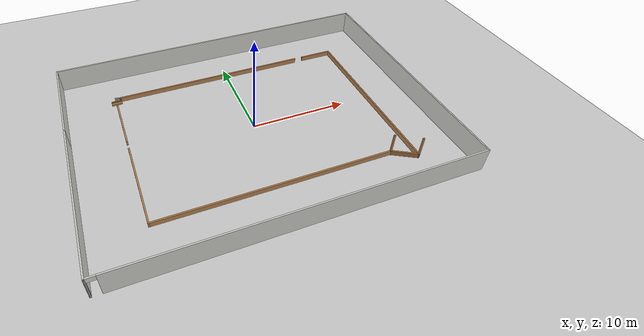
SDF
<sdf version="1.7">
 <world name="default">
  <light name="sun" type="directional">
   <pose>0 0 10 0 -0 0</pose>
   <diffuse>0.8 0.8 0.8 1</diffuse>
   <specular>0.2 0.2 0.2 1</specular>
   <attenuation>
    <range>1000</range>
    <constant>0.9</constant>
    <linear>0.01</linear>
    <quadratic>0.001</quadratic>
   </attenuation>
   <direction>-0.5 0.1 -0.9</direction>
   <spot><inner_angle>0</inner_angle><outer_angle>0</outer_angle><falloff>0</falloff></spot>
  </light>
  <model name="ground_plane">
   <static>1</static>
   <link name="link">
    <collision name="collision">
     <geometry><plane><normal>0 0 1</normal><size>100 100</size></plane></geometry>
     <surface><friction><ode><mu>100</mu><mu2>50</mu2></ode></friction></surface>
    </collision>
    <visual name="visual">
     <cast_shadows>0</cast_shadows>
     <geometry><plane><normal>0 0 1</normal><size>100 100</size></plane></geometry>
     <material>
      <script><uri>file://media/materials/scripts/gazebo.material</uri><name>Gazebo/Grey</name></script>
     </material>
    </visual>
   </link>
  </model>
  <gravity>0 0 -9.8</gravity>
  <magnetic_field>6e-06 2.3e-05 -4.2e-05</magnetic_field>
  <atmosphere type="adiabatic"/>
  <physics type="ode">
   <max_step_size>0.001</max_step_size>
   <real_time_factor>1</real_time_factor>
   <real_time_update_rate>1000</real_time_update_rate>
  </physics>
  <scene><ambient>0.4 0.4 0.4 1</ambient><background>0.7 0.7 0.7 1</background><shadows>1</shadows></scene>
  <spherical_coordinates>
   <surface_model>EARTH_WGS84</surface_model>
   <latitude_deg>0</latitude_deg>
   <longitude_deg>0</longitude_deg>
   <elevation>0</elevation>
   <heading_deg>0</heading_deg>
  </spherical_coordinates>
  <model name="w9">
   <pose>-0.107174 0.099638 0 0 -0 0</pose>
   <link name="Stairs_0">
    <visual name="Stairs_0_Visual_0">
     <pose>-12.3155 8.59462 0.083333 0 -0 0</pose>
     <geometry><box><size>1 0.233333 0.166667</size></box></geometry>
     <material>
      <script><uri>file://media/materials/scripts/gazebo.material</uri><name>Gazebo/Wood</name></script>
      <ambient>1 1 1 1</ambient>
     </material>
     <meta><layer>0</layer></meta>
    </visual>
    <collision name="Stairs_0_Collision_0">
     <geometry><box><size>1 0.233333 0.166667</size></box></geometry>
     <pose>-12.3155 8.59462 0.083333 0 -0 0</pose>
    </collision>
    <visual name="Stairs_0_Visual_1">
     <pose>-12.3155 8.36129 0.25 0 -0 0</pose>
     <geometry><box><size>1 0.233333 0.166667</size></box></geometry>
     <material>
      <script><uri>file://media/materials/scripts/gazebo.material</uri><name>Gazebo/Wood</name></script>
      <ambient>1 1 1 1</ambient>
     </material>
     <meta><layer>0</layer></meta>
    </visual>
    <collision name="Stairs_0_Collision_1">
     <geometry><box><size>1 0.233333 0.166667</size></box></geometry>
     <pose>-12.3155 8.36129 0.25 0 -0 0</pose>
    </collision>
    <visual name="Stairs_0_Visual_2">
     <pose>-12.3155 8.12796 0.416667 0 -0 0</pose>
     <geometry><box><size>1 0.233333 0.166667</size></box></geometry>
     <material>
      <script><uri>file://media/materials/scripts/gazebo.material</uri><name>Gazebo/Wood</name></script>
      <ambient>1 1 1 1</ambient>
     </material>
     <meta><layer>0</layer></meta>
    </visual>
    <collision name="Stairs_0_Collision_2">
     <geometry><box><size>1 0.233333 0.166667</size></box></geometry>
     <pose>-12.3155 8.12796 0.416667 0 -0 0</pose>
    </collision>
    <visual name="Stairs_0_Visual_3">
     <pose>-12.3155 7.89462 0.583333 0 -0 0</pose>
     <geometry><box><size>1 0.233333 0.166667</size></box></geometry>
     <material>
      <script><uri>file://media/materials/scripts/gazebo.material</uri><name>Gazebo/Wood</name></script>
      <ambient>1 1 1 1</ambient>
     </material>
     <meta><layer>0</layer></meta>
    </visual>
    <collision name="Stairs_0_Collision_3">
     <geometry><box><size>1 0.233333 0.166667</size></box></geometry>
     <pose>-12.3155 7.89462 0.583333 0 -0 0</pose>
    </collision>
    <visual name="Stairs_0_Visual_4">
     <pose>-12.3155 7.66129 0.75 0 -0 0</pose>
     <geometry><box><size>1 0.233333 0.166667</size></box></geometry>
     <material>
      <script><uri>file://media/materials/scripts/gazebo.material</uri><name>Gazebo/Wood</name></script>
      <ambient>1 1 1 1</ambient>
     </material>
     <meta><layer>0</layer></meta>
    </visual>
    <collision name="Stairs_0_Collision_4">
     <geometry><box><size>1 0.233333 0.166667</size></box></geometry>
     <pose>-12.3155 7.66129 0.75 0 -0 0</pose>
    </collision>
    <visual name="Stairs_0_Visual_5">
     <pose>-12.3155 7.42795 0.916667 0 -0 0</pose>
     <geometry><box><size>1 0.233333 0.166667</size></box></geometry>
     <material>
      <script><uri>file://media/materials/scripts/gazebo.material</uri><name>Gazebo/Wood</name></script>
      <ambient>1 1 1 1</ambient>
     </material>
     <meta><layer>0</layer></meta>
    </visual>
    <collision name="Stairs_0_Collision_5">
     <geometry><box><size>1 0.233333 0.166667</size></box></geometry>
     <pose>-12.3155 7.42795 0.916667 0 -0 0</pose>
    </collision>
    <visual name="Stairs_0_Visual_6">
     <pose>-12.3155 7.19462 1.08333 0 -0 0</pose>
     <geometry><box><size>1 0.233333 0.166667</size></box></geometry>
     <material>
      <script><uri>file://media/materials/scripts/gazebo.material</uri><name>Gazebo/Wood</name></script>
      <ambient>1 1 1 1</ambient>
     </material>
     <meta><layer>0</layer></meta>
    </visual>
    <collision name="Stairs_0_Collision_6">
     <geometry><box><size>1 0.233333 0.166667</size></box></geometry>
     <pose>-12.3155 7.19462 1.08333 0 -0 0</pose>
    </collision>
    <visual name="Stairs_0_Visual_7">
     <pose>-12.3155 6.96129 1.25 0 -0 0</pose>
     <geometry><box><size>1 0.233333 0.166667</size></box></geometry>
     <material>
      <script><uri>file://media/materials/scripts/gazebo.material</uri><name>Gazebo/Wood</name></script>
      <ambient>1 1 1 1</ambient>
     </material>
     <meta><layer>0</layer></meta>
    </visual>
    <collision name="Stairs_0_Collision_7">
     <geometry><box><size>1 0.233333 0.166667</size></box></geometry>
     <pose>-12.3155 6.96129 1.25 0 -0 0</pose>
    </collision>
    <visual name="Stairs_0_Visual_8">
     <pose>-12.3155 6.72795 1.41667 0 -0 0</pose>
     <geometry><box><size>1 0.233333 0.166667</size></box></geometry>
     <material>
      <script><uri>file://media/materials/scripts/gazebo.material</uri><name>Gazebo/Wood</name></script>
      <ambient>1 1 1 1</ambient>
     </material>
     <meta><layer>0</layer></meta>
    </visual>
    <collision name="Stairs_0_Collision_8">
     <geometry><box><size>1 0.233333 0.166667</size></box></geometry>
     <pose>-12.3155 6.72795 1.41667 0 -0 0</pose>
    </collision>
    <visual name="Stairs_0_Visual_9">
     <pose>-12.3155 6.49462 1.58333 0 -0 0</pose>
     <geometry><box><size>1 0.233333 0.166667</size></box></geometry>
     <material>
      <script><uri>file://media/materials/scripts/gazebo.material</uri><name>Gazebo/Wood</name></script>
      <ambient>1 1 1 1</ambient>
     </material>
     <meta><layer>0</layer></meta>
    </visual>
    <collision name="Stairs_0_Collision_9">
     <geometry><box><size>1 0.233333 0.166667</size></box></geometry>
     <pose>-12.3155 6.49462 1.58333 0 -0 0</pose>
    </collision>
    <visual name="Stairs_0_Visual_10">
     <pose>-12.3155 6.26129 1.75 0 -0 0</pose>
     <geometry><box><size>1 0.233333 0.166667</size></box></geometry>
     <material>
      <script><uri>file://media/materials/scripts/gazebo.material</uri><name>Gazebo/Wood</name></script>
      <ambient>1 1 1 1</ambient>
     </material>
     <meta><layer>0</layer></meta>
    </visual>
    <collision name="Stairs_0_Collision_10">
     <geometry><box><size>1 0.233333 0.166667</size></box></geometry>
     <pose>-12.3155 6.26129 1.75 0 -0 0</pose>
    </collision>
    <visual name="Stairs_0_Visual_11">
     <pose>-12.3155 6.02796 1.91667 0 -0 0</pose>
     <geometry><box><size>1 0.233333 0.166667</size></box></geometry>
     <material>
      <script><uri>file://media/materials/scripts/gazebo.material</uri><name>Gazebo/Wood</name></script>
      <ambient>1 1 1 1</ambient>
     </material>
     <meta><layer>0</layer></meta>
    </visual>
    <collision name="Stairs_0_Collision_11">
     <geometry><box><size>1 0.233333 0.166667</size></box></geometry>
     <pose>-12.3155 6.02796 1.91667 0 -0 0</pose>
    </collision>
    <visual name="Stairs_0_Visual_12">
     <pose>-12.3155 5.79462 2.08333 0 -0 0</pose>
     <geometry><box><size>1 0.233333 0.166667</size></box></geometry>
     <material>
      <script><uri>file://media/materials/scripts/gazebo.material</uri><name>Gazebo/Wood</name></script>
      <ambient>1 1 1 1</ambient>
     </material>
     <meta><layer>0</layer></meta>
    </visual>
    <collision name="Stairs_0_Collision_12">
     <geometry><box><size>1 0.233333 0.166667</size></box></geometry>
     <pose>-12.3155 5.79462 2.08333 0 -0 0</pose>
    </collision>
    <visual name="Stairs_0_Visual_13">
     <pose>-12.3155 5.56129 2.25 0 -0 0</pose>
     <geometry><box><size>1 0.233333 0.166667</size></box></geometry>
     <material>
      <script><uri>file://media/materials/scripts/gazebo.material</uri><name>Gazebo/Wood</name></script>
      <ambient>1 1 1 1</ambient>
     </material>
     <meta><layer>0</layer></meta>
    </visual>
    <collision name="Stairs_0_Collision_13">
     <geometry><box><size>1 0.233333 0.166667</size></box></geometry>
     <pose>-12.3155 5.56129 2.25 0 -0 0</pose>
    </collision>
    <visual name="Stairs_0_Visual_14">
     <pose>-12.3155 5.32796 2.41667 0 -0 0</pose>
     <geometry><box><size>1 0.233333 0.166667</size></box></geometry>
     <material>
      <script><uri>file://media/materials/scripts/gazebo.material</uri><name>Gazebo/Wood</name></script>
      <ambient>1 1 1 1</ambient>
     </material>
     <meta><layer>0</layer></meta>
    </visual>
    <collision name="Stairs_0_Collision_14">
     <geometry><box><size>1 0.233333 0.166667</size></box></geometry>
     <pose>-12.3155 5.32796 2.41667 0 -0 0</pose>
    </collision>
   </link>
   <link name="Wall_10">
    <pose>0.583152 8.68335 0 0 -0 0</pose>
    <visual name="Wall_10_Visual_0">
     <pose>-2.22989 0 0.25 0 -0 0</pose>
     <geometry><box><size>20.5402 0.15 0.5</size></box></geometry>
     <material>
      <script><uri>file://media/materials/scripts/gazebo.material</uri><name>Gazebo/Wood</name></script>
      <ambient>1 1 1 1</ambient>
     </material>
     <meta><layer>0</layer></meta>
    </visual>
    <collision name="Wall_10_Collision_0">
     <geometry><box><size>20.5402 0.15 0.5</size></box></geometry>
     <pose>-2.22989 0 0.25 0 -0 0</pose>
    </collision>
    <visual name="Wall_10_Visual_1">
     <pose>10.7201 0 0.25 0 -0 0</pose>
     <geometry><box><size>3.55979 0.15 0.5</size></box></geometry>
     <material>
      <script><uri>file://media/materials/scripts/gazebo.material</uri><name>Gazebo/Wood</name></script>
      <ambient>1 1 1 1</ambient>
     </material>
     <meta><layer>0</layer></meta>
    </visual>
    <collision name="Wall_10_Collision_1">
     <geometry><box><size>3.55979 0.15 0.5</size></box></geometry>
     <pose>10.7201 0 0.25 0 -0 0</pose>
    </collision>
   </link>
   <link name="Wall_11">
    <collision name="Wall_11_Collision">
     <geometry><box><size>18.5 0.15 0.5</size></box></geometry>
     <pose>0 0 0.25 0 -0 0</pose>
    </collision>
    <visual name="Wall_11_Visual">
     <pose>0 0 0.25 0 -0 0</pose>
     <geometry><box><size>18.5 0.15 0.5</size></box></geometry>
     <material>
      <script><uri>file://media/materials/scripts/gazebo.material</uri><name>Gazebo/Wood</name></script>
      <ambient>1 1 1 1</ambient>
     </material>
     <meta><layer>0</layer></meta>
    </visual>
    <pose>13.0082 -0.491654 0 0 -0 -1.5708</pose>
   </link>
   <link name="Wall_12">
    <collision name="Wall_12_Collision">
     <geometry><box><size>0.16 0.15 2.5</size></box></geometry>
     <pose>0 0 1.25 0 -0 0</pose>
    </collision>
    <visual name="Wall_12_Visual">
     <pose>0 0 1.25 0 -0 0</pose>
     <geometry><box><size>0.16 0.15 2.5</size></box></geometry>
     <material>
      <script><uri>file://media/materials/scripts/gazebo.material</uri><name>Gazebo/Wood</name></script>
      <ambient>1 1 1 1</ambient>
     </material>
     <meta><layer>0</layer></meta>
    </visual>
    <pose>13.0132 -9.66665 0 0 -0 0</pose>
   </link>
   <link name="Wall_13">
    <collision name="Wall_13_Collision">
     <geometry><box><size>2.75 0.15 0.5</size></box></geometry>
     <pose>0 0 0.25 0 -0 0</pose>
    </collision>
    <visual name="Wall_13_Visual">
     <pose>0 0 0.25 0 -0 0</pose>
     <geometry><box><size>2.75 0.15 0.5</size></box></geometry>
     <material>
      <script><uri>file://media/materials/scripts/gazebo.material</uri><name>Gazebo/Wood</name></script>
      <ambient>1 1 1 1</ambient>
     </material>
     <meta><layer>0</layer></meta>
    </visual>
    <pose>11.8927 -9.01665 0 0 -0 2.61787</pose>
   </link>
   <link name="Wall_14">
    <collision name="Wall_14_Collision">
     <geometry><box><size>0.16 0.15 2.5</size></box></geometry>
     <pose>0 0 1.25 0 -0 0</pose>
    </collision>
    <visual name="Wall_14_Visual">
     <pose>0 0 1.25 0 -0 0</pose>
     <geometry><box><size>0.16 0.15 2.5</size></box></geometry>
     <material>
      <script><uri>file://media/materials/scripts/gazebo.material</uri><name>Gazebo/Wood</name></script>
      <ambient>1 1 1 1</ambient>
     </material>
     <meta><layer>0</layer></meta>
    </visual>
    <pose>10.7722 -8.36665 0 0 -0 0</pose>
   </link>
   <link name="Wall_15">
    <collision name="Wall_15_Collision">
     <geometry><box><size>23.25 0.15 0.5</size></box></geometry>
     <pose>0 0 0.25 0 -0 0</pose>
    </collision>
    <visual name="Wall_15_Visual">
     <pose>0 0 0.25 0 -0 0</pose>
     <geometry><box><size>23.25 0.15 0.5</size></box></geometry>
     <material>
      <script><uri>file://media/materials/scripts/gazebo.material</uri><name>Gazebo/Wood</name></script>
      <ambient>1 1 1 1</ambient>
     </material>
     <meta><layer>0</layer></meta>
    </visual>
    <pose>-0.772848 -8.36665 0 0 -0 3.14159</pose>
   </link>
   <link name="Wall_16">
    <pose>-12.3228 0.183346 0 0 -0 1.5708</pose>
    <visual name="Wall_16_Visual_0">
     <pose>-3.99873 0 0.25 0 -0 0</pose>
     <geometry><box><size>9.25253 0.15 0.5</size></box></geometry>
     <material>
      <script><uri>file://media/materials/scripts/gazebo.material</uri><name>Gazebo/Wood</name></script>
      <ambient>1 1 1 1</ambient>
     </material>
     <meta><layer>0</layer></meta>
    </visual>
    <collision name="Wall_16_Collision_0">
     <geometry><box><size>9.25253 0.15 0.5</size></box></geometry>
     <pose>-3.99873 0 0.25 0 -0 0</pose>
    </collision>
    <visual name="Wall_16_Visual_1">
     <pose>5.07627 0 0.25 0 -0 0</pose>
     <geometry><box><size>7.09747 0.15 0.5</size></box></geometry>
     <material>
      <script><uri>file://media/materials/scripts/gazebo.material</uri><name>Gazebo/Wood</name></script>
      <ambient>1 1 1 1</ambient>
     </material>
     <meta><layer>0</layer></meta>
    </visual>
    <collision name="Wall_16_Collision_1">
     <geometry><box><size>7.09747 0.15 0.5</size></box></geometry>
     <pose>5.07627 0 0.25 0 -0 0</pose>
    </collision>
   </link>
   <link name="Wall_17">
    <collision name="Wall_17_Collision">
     <geometry><box><size>0.634254 0.15 0.5</size></box></geometry>
     <pose>0 0 0.25 0 -0 0</pose>
    </collision>
    <visual name="Wall_17_Visual">
     <pose>0 0 0.25 0 -0 0</pose>
     <geometry><box><size>0.634254 0.15 0.5</size></box></geometry>
     <material>
      <script><uri>file://media/materials/scripts/gazebo.material</uri><name>Gazebo/Grey</name></script>
      <ambient>1 1 1 1</ambient>
     </material>
     <meta><layer>0</layer></meta>
    </visual>
    <pose>-12.0823 8.70835 0 0 -0 -0.103578</pose>
   </link>
   <link name="Wall_2">
    <collision name="Wall_2_Collision">
     <geometry><box><size>16.25 0.15 2.5</size></box></geometry>
     <pose>0 0 1.25 0 -0 0</pose>
    </collision>
    <visual name="Wall_2_Visual">
     <pose>0 0 1.25 0 -0 0</pose>
     <geometry><box><size>16.25 0.15 2.5</size></box></geometry>
     <material>
      <script><uri>file://media/materials/scripts/gazebo.material</uri><name>Gazebo/CeilingTiled</name></script>
      <ambient>0.0705882 0.937255 0.886275 1</ambient>
     </material>
     <meta><layer>0</layer></meta>
    </visual>
    <pose>-17.5549 -4.87508 0 0 -0 -1.5708</pose>
   </link>
   <link name="Wall_3">
    <collision name="Wall_3_Collision">
     <geometry><box><size>0.16 0.15 2.5</size></box></geometry>
     <pose>0 0 1.25 0 -0 0</pose>
    </collision>
    <visual name="Wall_3_Visual">
     <pose>0 0 1.25 0 -0 0</pose>
     <geometry><box><size>0.16 0.15 2.5</size></box></geometry>
     <material>
      <script><uri>file://media/materials/scripts/gazebo.material</uri><name>Gazebo/Grey</name></script>
      <ambient>1 1 1 1</ambient>
     </material>
     <meta><layer>0</layer></meta>
    </visual>
    <pose>-17.5499 -12.9251 0 0 -0 0</pose>
   </link>
   <link name="Wall_4">
    <pose>0.005076 -12.9251 0 0 -0 0</pose>
    <visual name="Wall_4_Visual_0">
     <pose>-17.6035 0 1.25 0 -0 0</pose>
     <geometry><box><size>0.043019 0.15 2.5</size></box></geometry>
     <material>
      <script><uri>file://media/materials/scripts/gazebo.material</uri><name>Gazebo/CeilingTiled</name></script>
      <ambient>0.0705882 0.937255 0.886275 1</ambient>
     </material>
     <meta><layer>0</layer></meta>
    </visual>
    <collision name="Wall_4_Collision_0">
     <geometry><box><size>0.043019 0.15 2.5</size></box></geometry>
     <pose>-17.6035 0 1.25 0 -0 0</pose>
    </collision>
    <visual name="Wall_4_Visual_1">
     <pose>0.47151 0 1.25 0 -0 0</pose>
     <geometry><box><size>34.307 0.15 2.5</size></box></geometry>
     <material>
      <script><uri>file://media/materials/scripts/gazebo.material</uri><name>Gazebo/CeilingTiled</name></script>
      <ambient>0.0705882 0.937255 0.886275 1</ambient>
     </material>
     <meta><layer>0</layer></meta>
    </visual>
    <collision name="Wall_4_Collision_1">
     <geometry><box><size>34.307 0.15 2.5</size></box></geometry>
     <pose>0.47151 0 1.25 0 -0 0</pose>
    </collision>
    <visual name="Wall_4_Visual_2">
     <pose>-17.132 0 2.25 0 -0 0</pose>
     <geometry><box><size>0.9 0.15 0.5</size></box></geometry>
     <material>
      <script><uri>file://media/materials/scripts/gazebo.material</uri><name>Gazebo/CeilingTiled</name></script>
      <ambient>0.0705882 0.937255 0.886275 1</ambient>
     </material>
     <meta><layer>0</layer></meta>
    </visual>
    <collision name="Wall_4_Collision_2">
     <geometry><box><size>0.9 0.15 0.5</size></box></geometry>
     <pose>-17.132 0 2.25 0 -0 0</pose>
    </collision>
   </link>
   <link name="Wall_5">
    <collision name="Wall_5_Collision">
     <geometry><box><size>26 0.15 2.5</size></box></geometry>
     <pose>0 0 1.25 0 -0 0</pose>
    </collision>
    <visual name="Wall_5_Visual">
     <pose>0 0 1.25 0 -0 0</pose>
     <geometry><box><size>26 0.15 2.5</size></box></geometry>
     <material>
      <script><uri>file://media/materials/scripts/gazebo.material</uri><name>Gazebo/CeilingTiled</name></script>
      <ambient>0.0705882 0.937255 0.886275 1</ambient>
     </material>
     <meta><layer>0</layer></meta>
    </visual>
    <pose>17.5551 -7.6e-05 0 0 -0 1.5708</pose>
   </link>
   <link name="Wall_6">
    <collision name="Wall_6_Collision">
     <geometry><box><size>35.25 0.15 2.5</size></box></geometry>
     <pose>0 0 1.25 0 -0 0</pose>
    </collision>
    <visual name="Wall_6_Visual">
     <pose>0 0 1.25 0 -0 0</pose>
     <geometry><box><size>35.25 0.15 2.5</size></box></geometry>
     <material>
      <script><uri>file://media/materials/scripts/gazebo.material</uri><name>Gazebo/CeilingTiled</name></script>
      <ambient>0.0705882 0.937255 0.886275 1</ambient>
     </material>
     <meta><layer>0</layer></meta>
    </visual>
    <pose>0.005076 12.9249 0 0 -0 3.14159</pose>
   </link>
   <link name="Wall_7">
    <collision name="Wall_7_Collision">
     <geometry><box><size>0.16 0.15 2.5</size></box></geometry>
     <pose>0 0 1.25 0 -0 0</pose>
    </collision>
    <visual name="Wall_7_Visual">
     <pose>0 0 1.25 0 -0 0</pose>
     <geometry><box><size>0.16 0.15 2.5</size></box></geometry>
     <material>
      <script><uri>file://media/materials/scripts/gazebo.material</uri><name>Gazebo/Grey</name></script>
      <ambient>1 1 1 1</ambient>
     </material>
     <meta><layer>0</layer></meta>
    </visual>
    <pose>-17.5399 12.9249 0 0 -0 0</pose>
   </link>
   <link name="Wall_8">
    <collision name="Wall_8_Collision">
     <geometry><box><size>9.90002 0.15 2.5</size></box></geometry>
     <pose>0 0 1.25 0 -0 0</pose>
    </collision>
    <visual name="Wall_8_Visual">
     <pose>0 0 1.25 0 -0 0</pose>
     <geometry><box><size>9.90002 0.15 2.5</size></box></geometry>
     <material>
      <script><uri>file://media/materials/scripts/gazebo.material</uri><name>Gazebo/CeilingTiled</name></script>
      <ambient>0.0705882 0.937255 0.886275 1</ambient>
     </material>
     <meta><layer>0</layer></meta>
    </visual>
    <pose>-17.5449 8.04992 0 0 -0 -1.57285</pose>
   </link>
   <static>1</static>
  </model>
 </world>
</sdf>
